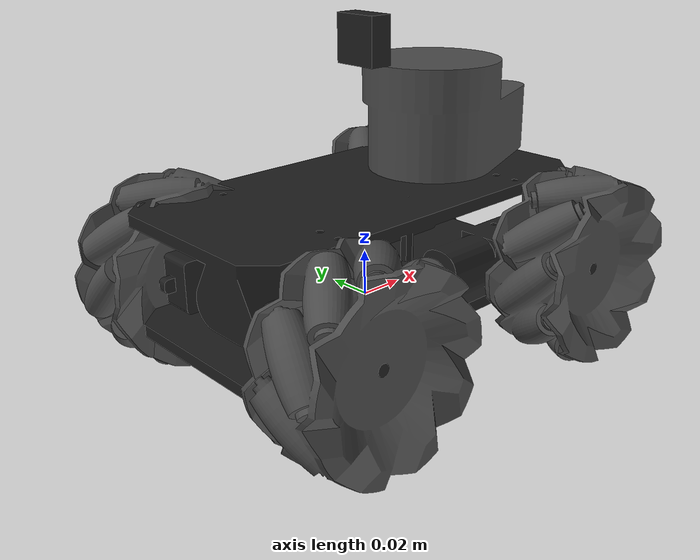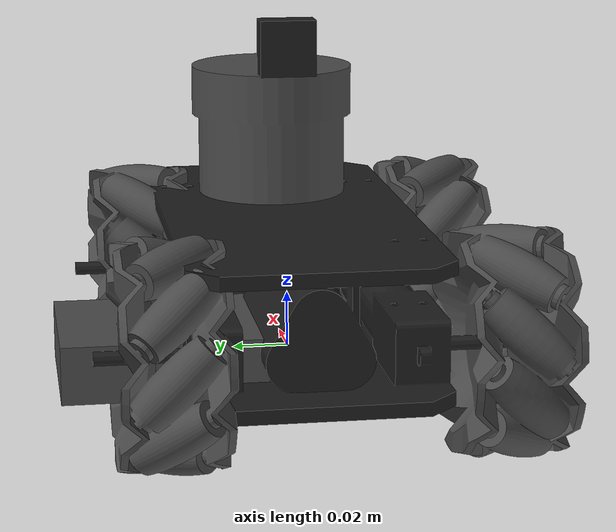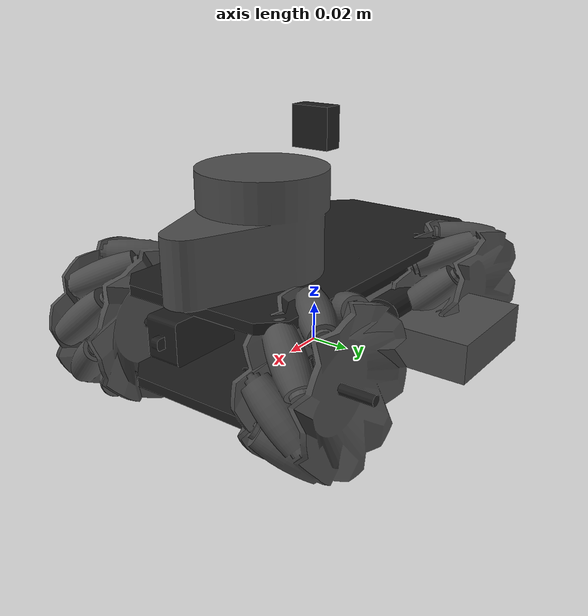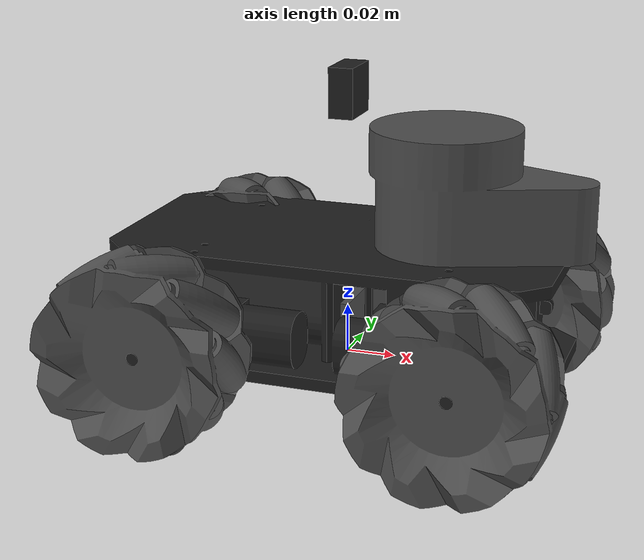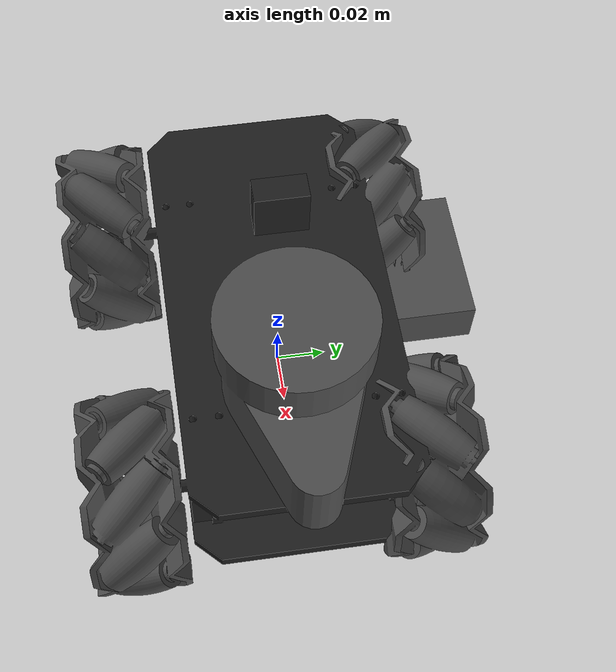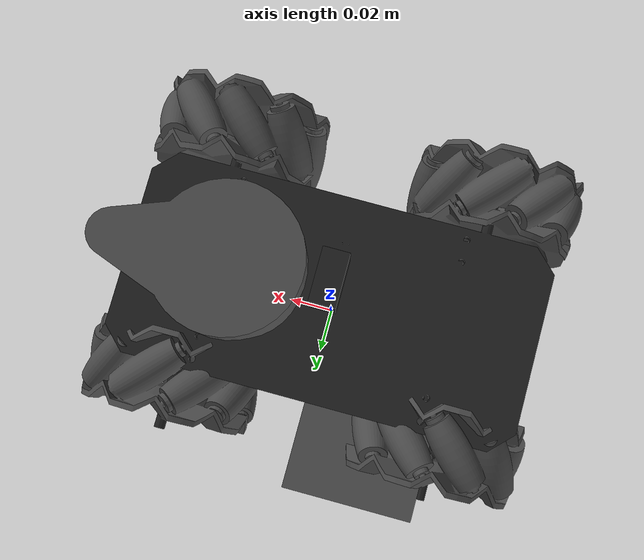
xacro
<?xml version="1.0"?>
<robot name="ares_laser_gazebo" xmlns:xacro="http://www.ros.org/wiki/xacro">
    <!-- Included URDF Files -->
    <xacro:include filename="$(find ares_description)/urdf/ares_base.xacro" />
    <xacro:ares_base />

    <xacro:include filename="$(find ares_description)/urdf/sensors/laser.xacro" />
    <xacro:laser />

    <xacro:include filename="$(find ares_description)/urdf/sensors/camera.xacro" />
    <xacro:camera />

    <xacro:property name="camera_offset_x" value="0" />
    <xacro:property name="camera_offset_y" value="0" />
    <xacro:property name="camera_offset_z" value="0.11" />
    <!-- Camera -->

    <joint name="camera_joint" type="fixed">
        <origin xyz="${camera_offset_x} ${camera_offset_y} ${camera_offset_z}" rpy="0 0 0" />
        <parent link="base_link"/>
        <child link="camera_link"/>
    </joint>

    <!-- kinect -->

</robot>

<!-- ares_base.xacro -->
<robot name="ares_base" xmlns:xacro="http://www.ros.org/wiki/xacro">
	<xacro:macro name="ares_base">
	  <gazebo reference="base_link">
    	<material>Gazebo/FlatBlack</material>
  	  </gazebo>

		<link name="base_link">
			<inertial>
				<origin xyz="0.00000813 0 0.02322078" />
				<mass value="0.55722619" />
				<inertia ixx="0.00067251" ixy="0" ixz="0" iyy="0.0016127" iyz="0" izz="0.00182111" />
			</inertial>
			<visual>
				<origin xyz="0 0 0" rpy="0 0 0" />
				<geometry>
					<mesh filename="package://ares_description/meshes/base_link.STL" />
				</geometry>

			</visual>
			<collision>
				<origin xyz="0 0 0" rpy="0 0 0" />
				<geometry>
					<mesh filename="package://ares_description/meshes/base_link.STL" />
				</geometry>
			</collision>
		</link>
	  <gazebo reference="wheel_lf_link">
    	 <material>Gazebo/DarkGrey</material>
  	  </gazebo>
		<link name="wheel_lf_link">
			<inertial>
				<origin xyz="0 0.00856913 0" rpy="0 0 0" />
				<mass value="0.07503549" />
				<inertia ixx="0.00004285" ixy="0" ixz="0" iyy="0.00007349" iyz="0" izz="0.00004285" />
			</inertial>
			<visual>
				<origin xyz="0 0 0" rpy="0 0 0" />
				<geometry>
					<mesh filename="package://ares_description/meshes/wheel_lf_link.STL" />
				</geometry>

			</visual>
			<collision>
				<origin xyz="0 0.0085707 0" rpy="0 0 0" />
				<geometry>
					<mesh filename="package://ares_description/meshes/wheel_lf_link.STL" />
				</geometry>
			</collision>
		</link>
		<joint name="wheel_lf_joint" type="continuous">
			<origin xyz="0.0614863916393112 0.0574 0.01625" rpy="0 0 0" />
			<parent link="base_link" />
			<child link="wheel_lf_link" />
			<axis xyz="0 -1 0" />
		</joint>
		<gazebo reference="wheel_lb_link">
    			<material>Gazebo/DarkGrey</material>
  	    	</gazebo>
		<link name="wheel_lb_link">
			<inertial>
				<origin xyz="0 0.00856913 0" rpy="0 0 0" />
				<mass value="0.07503549" />
				<inertia ixx="0.00004285" ixy="0" ixz="0" iyy="0.00007349" iyz="0" izz="0.00004285" />
			</inertial>
			<visual>
				<origin xyz="0 0 0" rpy="0 0 0" />
				<geometry>
					<mesh filename="package://ares_description/meshes/wheel_lb_link.STL" />
				</geometry>

			</visual>
			<collision>
				<origin xyz="0 0 0" rpy="0 0 0" />
				<geometry>
					<mesh filename="package://ares_description/meshes/wheel_lb_link.STL" />
				</geometry>
			</collision>
		</link>
		<joint name="wheel_lb_joint" type="continuous">
			<origin xyz="-0.0614863916393112 0.0574 0.01625" rpy="0 0 0" />
			<parent link="base_link" />
			<child link="wheel_lb_link" />
			<axis xyz="0 -1 0" />
		</joint>

		<gazebo reference="wheel_rf_link">
    		<material>Gazebo/DarkGrey</material>
  	    </gazebo>
		<link name="wheel_rf_link">
			<inertial>
				<origin xyz="0 0.00856913 0" rpy="0 0 0" />
				<mass value="0.07503549" />
				<inertia ixx="0.00004285" ixy="0" ixz="0" iyy="0.00007349" iyz="0" izz="0.00004285" />
			</inertial>
			<visual>
				<origin xyz="0 0 0" rpy="0 0 0" />
				<geometry>
					<mesh filename="package://ares_description/meshes/wheel_rf_link.STL" />
				</geometry>

			</visual>
			<collision>
				<origin xyz="0 0 0" rpy="0 0 0" />
				<geometry>
					<mesh filename="package://ares_description/meshes/wheel_rf_link.STL" />
				</geometry>
			</collision>
		</link>
		<joint name="wheel_rf_joint" type="continuous">
			<origin xyz="0.0614863916393112 -0.0574 0.01625" rpy="3.14159265358979 0 0" />
			<parent link="base_link" />
			<child link="wheel_rf_link" />
			<axis xyz="0 -1 0" />
		</joint>
		<gazebo reference="wheel_rb_link">
    		<material>Gazebo/DarkGrey</material>
  	    </gazebo>
		<link name="wheel_rb_link">
			<inertial>
				<origin xyz="0 0.00856913 0" rpy="0 0 0" />
				<mass value="0.07503549" />
				<inertia ixx="0.00004285" ixy="0" ixz="0" iyy="0.00007349" iyz="0" izz="0.00004285" />
			</inertial>
			<visual>
				<origin xyz="0 0 0" rpy="0 0 0" />
				<geometry>
					<mesh filename="package://ares_description/meshes/wheel_rb_link.STL" />
				</geometry>

			</visual>
			<collision>
				<origin xyz="0 0 0" rpy="0 0 0" />
				<geometry>
					<mesh filename="package://ares_description/meshes/wheel_rb_link.STL" />
				</geometry>
			</collision>
		</link>
		<joint name="wheel_rb_joint" type="continuous">
			<origin xyz="-0.0614863916393112 -0.0574 0.01625" rpy="3.14159265358979 0 0" />
			<parent link="base_link" />
			<child link="wheel_rb_link" />
			<axis xyz="0 -1 0" />
		</joint>

		<gazebo reference="controller_link">
    		<material>Gazebo/DarkGrey</material>
  	    </gazebo>
		<link name="controller_link">
			<inertial>
				<origin xyz="0 0 0" rpy="0 0 0" />
				<mass value="0" />
				<inertia ixx="0" ixy="0" ixz="0" iyy="0" iyz="0" izz="0" />
			</inertial>
			<visual>
				<origin xyz="0 0 0" rpy="0 0 0" />
				<geometry>
					<mesh filename="package://ares_description/meshes/controller_link.STL" />
				</geometry>

			</visual>
			<collision>
				<origin xyz="0 0 0" rpy="0 0 0" />
				<geometry>
					<mesh filename="package://ares_description/meshes/controller_link.STL" />
				</geometry>
			</collision>
		</link>
		<joint name="controller_joint" type="fixed">
			<origin xyz="0 0 0" rpy="0 0 0" />
			<parent link="base_link" />
			<child link="controller_link" />
			<axis xyz="0 0 0" />
		</joint>

		<!--The root link base_link has an inertia specified in the URDF, but KDL does not support a root link with an inertia.  As a workaround, you can add an extra dummy link to your URDF. -->
		<link name="dummy">
		</link>
		<joint name="dummy_joint" type="fixed">
     		<parent link="dummy"/>
     		<child link="base_link"/>
		</joint>

		<gazebo>
			<plugin name="mecanum_controller" filename="libgazebo_ros_planar_move.so">
				<commandTopic>cmd_vel</commandTopic>
				<odometryTopic>odom</odometryTopic>
				<odometryFrame>odom</odometryFrame>
				<leftFrontJoint>wheel_lf_joint</leftFrontJoint>
				<rightFrontJoint>wheel_rf_joint</rightFrontJoint>
				<leftRearJoint>wheel_lb_joint</leftRearJoint>
				<rightRearJoint>wheel_rb_joint</rightRearJoint>
				<odometryRate>20.0</odometryRate>
				<robotBaseFrame>$(arg bodyframe)/base_link</robotBaseFrame>
			</plugin>
			<plugin name="p3d_base_controller" filename="libgazebo_ros_p3d.so">
    				<alwaysOn>true</alwaysOn>
    				<updateRate>50.0</updateRate>
    				<bodyName>base_link</bodyName>
   				<topicName>base_pose_ground_truth</topicName>
    				<gaussianNoise>0.01</gaussianNoise>
    				<frameName>world</frameName>
    				<xyzOffsets>0 0 0</xyzOffsets>
   				<rpyOffsets>0 0 0</rpyOffsets>
 			</plugin>

		</gazebo>
	</xacro:macro>

</robot>

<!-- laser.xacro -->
<robot name="laser" xmlns:xacro="http://www.ros.org/wiki/xacro">
	<xacro:macro name="laser">
	<gazebo reference="laser_link">
    		<material>Gazebo/DarkGrey</material>
  	</gazebo>
		<link name="laser_link">
			<inertial>
				<origin xyz="0 0 0" rpy="0 0 0" />
				<mass value="0" />
				<inertia ixx="0" ixy="0" ixz="0" iyy="0" iyz="0" izz="0" />
			</inertial>
			<visual>
				<origin xyz="0 0 0" rpy="0 0 0" />
				<geometry>
					<mesh filename="package://ares_description/meshes/laser_link.STL" />
				</geometry>

			</visual>
			<collision>
				<origin xyz="0 0 0" rpy="0 0 0" />
				<geometry>
					<mesh filename="package://ares_description/meshes/laser_link.STL" />
				</geometry>
			</collision>
		</link>
		<joint name="laser_joint" type="fixed">
			<origin xyz="0.040036 0 0.089" rpy="0 0 0" />
			<parent link="base_link" />
			<child link="laser_link" />
			<axis xyz="0 0 0" />
		</joint>
		<gazebo reference="laser_link">
			<sensor type="ray" name="laser">
				<pose>0 0 0 0 0 0</pose>
				<visualize>false</visualize>
				<update_rate>8</update_rate>
				<ray>
					<scan>
						<horizontal>
							<samples>360</samples>
							<resolution>1</resolution>
							<min_angle>-3.14</min_angle>
							<max_angle>3.14</max_angle>
						</horizontal>
					</scan>
					<range>
						<min>0.10</min>
						<max>10.0</max>
						<resolution>0.01</resolution>
					</range>
					<noise>
						<type>gaussian</type>
						<mean>0.0</mean>
						<stddev>0.01</stddev>
					</noise>
				</ray>
				<plugin name="gazebo_laser" filename="libgazebo_ros_laser.so">
					<topicName>scan</topicName>
					<frameName>laser_link</frameName>
				</plugin>
			</sensor>
		</gazebo>
	</xacro:macro>

</robot>

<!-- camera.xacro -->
<robot xmlns:xacro="http://www.ros.org/wiki/xacro" name="camera">

    <xacro:macro name="camera" params="prefix:=camera">
        <!-- Create laser reference frame -->
        <gazebo reference="${prefix}_link">
    	    <material>Gazebo/FlatBlack</material>
  	</gazebo>
        <link name="${prefix}_link">
            <inertial>
                <mass value="0.1" />
                <origin xyz="0 0 0" />
                <inertia ixx="0.01" ixy="0.0" ixz="0.0"
                         iyy="0.01" iyz="0.0"
                         izz="0.01" />
            </inertial>

            <visual>
                <origin xyz=" 0 0 0 " rpy="0 0 0" />
                <geometry>
                    <box size="0.01 0.02 0.02" />
                </geometry>
            </visual>

            <collision>
                <origin xyz="0.0 0.0 0.0" rpy="0 0 0" />
                <geometry>
                    <box size="0.01 0.02 0.02" />
                </geometry>
            </collision>
        </link>

        <gazebo reference="${prefix}_link">
            <sensor type="camera" name="camera_node">
                <update_rate>30.0</update_rate>
                <camera name="head">
                    <horizontal_fov>1.3962634</horizontal_fov>
                    <image>
                        <width>1280</width>
                        <height>720</height>
                        <format>R8G8B8</format>
                    </image>
                    <clip>
                        <near>0.02</near>
                        <far>300</far>
                    </clip>
                    <noise>
                        <type>gaussian</type>
                        <mean>0.0</mean>
                        <stddev>0.007</stddev>
                    </noise>
                </camera>
                <plugin name="gazebo_camera" filename="libgazebo_ros_camera.so">
                    <alwaysOn>true</alwaysOn>
                    <updateRate>0.0</updateRate>
                    <cameraName>/camera</cameraName>
                    <imageTopicName>image_raw</imageTopicName>
                    <cameraInfoTopicName>camera_info</cameraInfoTopicName>
                    <frameName>camera_link</frameName>
                    <hackBaseline>0.07</hackBaseline>
                    <distortionK1>0.0</distortionK1>
                    <distortionK2>0.0</distortionK2>
                    <distortionK3>0.0</distortionK3>
                    <distortionT1>0.0</distortionT1>
                    <distortionT2>0.0</distortionT2>
                </plugin>
            </sensor>
        </gazebo>

    </xacro:macro>

</robot>
